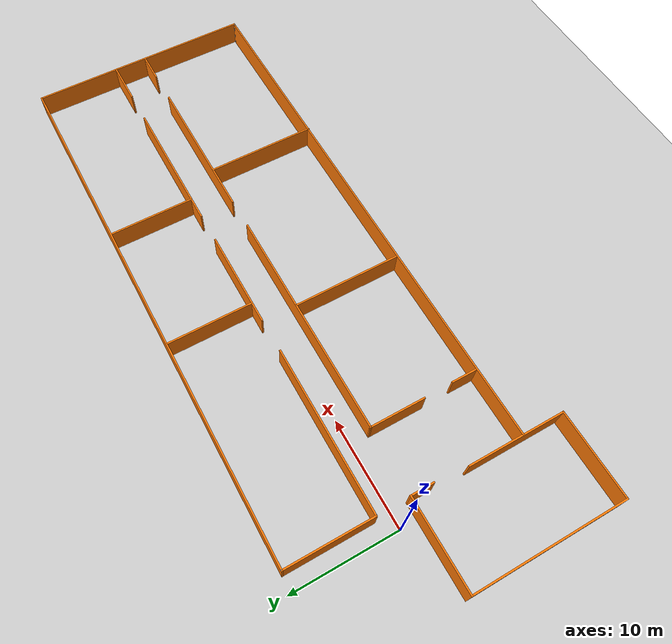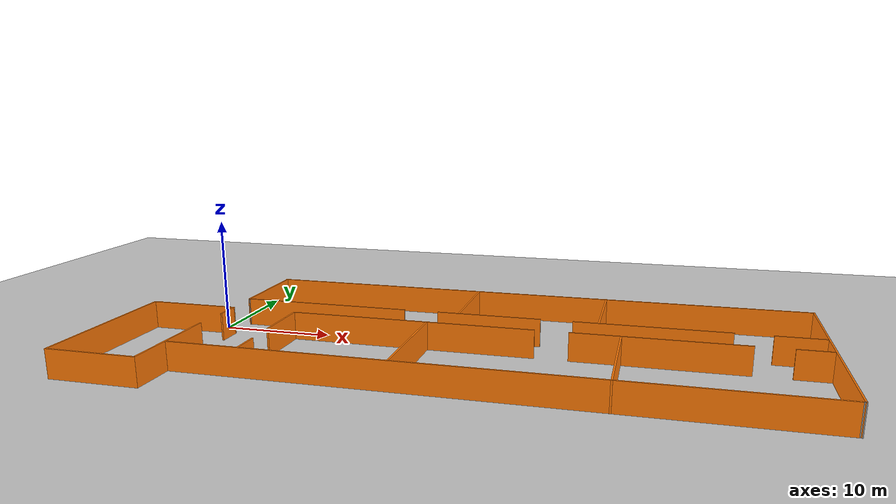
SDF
<sdf version="1.7">
 <world name="default">
  <light name="sun" type="directional">
   <pose>0 0 10 0 -0 0</pose>
   <diffuse>0.8 0.8 0.8 1</diffuse>
   <specular>0.2 0.2 0.2 1</specular>
   <attenuation>
    <range>1000</range>
    <constant>0.9</constant>
    <linear>0.01</linear>
    <quadratic>0.001</quadratic>
   </attenuation>
   <direction>-0.5 0.1 -0.9</direction>
   <spot><inner_angle>0</inner_angle><outer_angle>0</outer_angle><falloff>0</falloff></spot>
  </light>
  <model name="ground_plane">
   <static>1</static>
   <link name="link">
    <collision name="collision">
     <geometry><plane><normal>0 0 1</normal><size>100 100</size></plane></geometry>
     <surface>
      <contact><collide_bitmask>65535</collide_bitmask></contact>
      <friction><ode><mu>100</mu><mu2>50</mu2></ode></friction>
     </surface>
    </collision>
    <visual name="visual">
     <cast_shadows>0</cast_shadows>
     <geometry><plane><normal>0 0 1</normal><size>100 100</size></plane></geometry>
     <material>
      <script><uri>file://media/materials/scripts/gazebo.material</uri><name>Gazebo/Grey</name></script>
     </material>
    </visual>
   </link>
  </model>
  <gravity>0 0 -9.8</gravity>
  <magnetic_field>6e-06 2.3e-05 -4.2e-05</magnetic_field>
  <atmosphere type="adiabatic"/>
  <physics type="ode">
   <max_step_size>0.001</max_step_size>
   <real_time_factor>1</real_time_factor>
   <real_time_update_rate>1000</real_time_update_rate>
  </physics>
  <scene><ambient>0.4 0.4 0.4 1</ambient><background>0.7 0.7 0.7 1</background><shadows>1</shadows></scene>
  <spherical_coordinates>
   <surface_model>EARTH_WGS84</surface_model>
   <latitude_deg>0</latitude_deg>
   <longitude_deg>0</longitude_deg>
   <elevation>0</elevation>
   <heading_deg>0</heading_deg>
  </spherical_coordinates>
  <model name="telegabot_world">
   <pose>22.9849 -3.14705 0 0 -0 0</pose>
   <link name="Wall_0">
    <collision name="Wall_0_Collision">
     <geometry><box><size>2.25 0.15 2.5</size></box></geometry>
     <pose>0 0 1.25 0 -0 0</pose>
    </collision>
    <visual name="Wall_0_Visual">
     <pose>0 0 1.25 0 -0 0</pose>
     <geometry><box><size>2.25 0.15 2.5</size></box></geometry>
     <material>
      <script><uri>file://media/materials/scripts/gazebo.material</uri><name>Gazebo/Grey</name></script>
      <ambient>0.996078 0.47451 0.0196078 1</ambient>
     </material>
     <meta><layer>0</layer></meta>
    </visual>
    <pose>-21.4812 0.528132 0 0 -0 1.5708</pose>
   </link>
   <link name="Wall_1">
    <collision name="Wall_1_Collision">
     <geometry><box><size>8.25 0.15 2.5</size></box></geometry>
     <pose>0 0 1.25 0 -0 0</pose>
    </collision>
    <visual name="Wall_1_Visual">
     <pose>0 0 1.25 0 -0 0</pose>
     <geometry><box><size>8.25 0.15 2.5</size></box></geometry>
     <material>
      <script><uri>file://media/materials/scripts/gazebo.material</uri><name>Gazebo/Grey</name></script>
      <ambient>0.996078 0.47451 0.0196078 1</ambient>
     </material>
     <meta><layer>0</layer></meta>
    </visual>
    <pose>-25.5312 1.57813 0 0 -0 3.14159</pose>
   </link>
   <link name="Wall_10">
    <collision name="Wall_10_Collision">
     <geometry><box><size>0.16 0.15 2.5</size></box></geometry>
     <pose>0 0 1.25 0 -0 0</pose>
    </collision>
    <visual name="Wall_10_Visual">
     <pose>0 0 1.25 0 -0 0</pose>
     <geometry><box><size>0.16 0.15 2.5</size></box></geometry>
     <material>
      <script><uri>file://media/materials/scripts/gazebo.material</uri><name>Gazebo/Grey</name></script>
      <ambient>1 1 1 1</ambient>
     </material>
     <meta><layer>0</layer></meta>
    </visual>
    <pose>29.5762 12.7719 0 0 -0 0</pose>
   </link>
   <link name="Wall_11">
    <collision name="Wall_11_Collision">
     <geometry><box><size>51.25 0.15 2.5</size></box></geometry>
     <pose>0 0 1.25 0 -0 0</pose>
    </collision>
    <visual name="Wall_11_Visual">
     <pose>0 0 1.25 0 -0 0</pose>
     <geometry><box><size>51.25 0.15 2.5</size></box></geometry>
     <material>
      <script><uri>file://media/materials/scripts/gazebo.material</uri><name>Gazebo/Grey</name></script>
      <ambient>0.996078 0.47451 0.0196078 1</ambient>
     </material>
     <meta><layer>0</layer></meta>
    </visual>
    <pose>4.03118 12.7719 0 0 -0 3.14159</pose>
   </link>
   <link name="Wall_12">
    <collision name="Wall_12_Collision">
     <geometry><box><size>0.16 0.15 2.5</size></box></geometry>
     <pose>0 0 1.25 0 -0 0</pose>
    </collision>
    <visual name="Wall_12_Visual">
     <pose>0 0 1.25 0 -0 0</pose>
     <geometry><box><size>0.16 0.15 2.5</size></box></geometry>
     <material>
      <script><uri>file://media/materials/scripts/gazebo.material</uri><name>Gazebo/Grey</name></script>
      <ambient>1 1 1 1</ambient>
     </material>
     <meta><layer>0</layer></meta>
    </visual>
    <pose>-21.5138 12.7719 0 0 -0 0</pose>
   </link>
   <link name="Wall_13">
    <collision name="Wall_13_Collision">
     <geometry><box><size>8.25 0.15 2.5</size></box></geometry>
     <pose>0 0 1.25 0 -0 0</pose>
    </collision>
    <visual name="Wall_13_Visual">
     <pose>0 0 1.25 0 -0 0</pose>
     <geometry><box><size>8.25 0.15 2.5</size></box></geometry>
     <material>
      <script><uri>file://media/materials/scripts/gazebo.material</uri><name>Gazebo/Grey</name></script>
      <ambient>0.996078 0.47451 0.0196078 1</ambient>
     </material>
     <meta><layer>0</layer></meta>
    </visual>
    <pose>-21.5088 8.72187 0 0 -0 -1.5708</pose>
   </link>
   <link name="Wall_14">
    <collision name="Wall_14_Collision">
     <geometry><box><size>0.16 0.15 2.5</size></box></geometry>
     <pose>0 0 1.25 0 -0 0</pose>
    </collision>
    <visual name="Wall_14_Visual">
     <pose>0 0 1.25 0 -0 0</pose>
     <geometry><box><size>0.16 0.15 2.5</size></box></geometry>
     <material>
      <script><uri>file://media/materials/scripts/gazebo.material</uri><name>Gazebo/Grey</name></script>
      <ambient>1 1 1 1</ambient>
     </material>
     <meta><layer>0</layer></meta>
    </visual>
    <pose>-21.5038 4.67187 0 0 -0 0</pose>
   </link>
   <link name="Wall_15">
    <collision name="Wall_15_Collision">
     <geometry><box><size>15.5 0.15 2.5</size></box></geometry>
     <pose>0 0 1.25 0 -0 0</pose>
    </collision>
    <visual name="Wall_15_Visual">
     <pose>0 0 1.25 0 -0 0</pose>
     <geometry><box><size>15.5 0.15 2.5</size></box></geometry>
     <material>
      <script><uri>file://media/materials/scripts/gazebo.material</uri><name>Gazebo/Grey</name></script>
      <ambient>0.996078 0.47451 0.0196078 1</ambient>
     </material>
     <meta><layer>0</layer></meta>
    </visual>
    <pose>-13.8238 4.67187 0 0 -0 0</pose>
   </link>
   <link name="Wall_17">
    <collision name="Wall_17_Collision">
     <geometry><box><size>9.25 0.15 2.5</size></box></geometry>
     <pose>0 0 1.25 0 -0 0</pose>
    </collision>
    <visual name="Wall_17_Visual">
     <pose>0 0 1.25 0 -0 0</pose>
     <geometry><box><size>9.25 0.15 2.5</size></box></geometry>
     <material>
      <script><uri>file://media/materials/scripts/gazebo.material</uri><name>Gazebo/Grey</name></script>
      <ambient>0.996078 0.47451 0.0196078 1</ambient>
     </material>
     <meta><layer>0</layer></meta>
    </visual>
    <pose>1.65024 4.708 0 0 -0 0</pose>
   </link>
   <link name="Wall_2">
    <collision name="Wall_2_Collision">
     <geometry><box><size>14.5 0.15 2.5</size></box></geometry>
     <pose>0 0 1.25 0 -0 0</pose>
    </collision>
    <visual name="Wall_2_Visual">
     <pose>0 0 1.25 0 -0 0</pose>
     <geometry><box><size>14.5 0.15 2.5</size></box></geometry>
     <material>
      <script><uri>file://media/materials/scripts/gazebo.material</uri><name>Gazebo/Grey</name></script>
      <ambient>0.996078 0.47451 0.0196078 1</ambient>
     </material>
     <meta><layer>0</layer></meta>
    </visual>
    <pose>-29.5812 -5.59687 0 0 -0 -1.5708</pose>
   </link>
   <link name="Wall_20">
    <collision name="Wall_20_Collision">
     <geometry><box><size>13.25 0.15 2.5</size></box></geometry>
     <pose>0 0 1.25 0 -0 0</pose>
    </collision>
    <visual name="Wall_20_Visual">
     <pose>0 0 1.25 0 -0 0</pose>
     <geometry><box><size>13.25 0.15 2.5</size></box></geometry>
     <material>
      <script><uri>file://media/materials/scripts/gazebo.material</uri><name>Gazebo/Grey</name></script>
      <ambient>0.996078 0.47451 0.0196078 1</ambient>
     </material>
     <meta><layer>0</layer></meta>
    </visual>
    <pose>15.6889 4.72594 0 0 -0 0</pose>
   </link>
   <link name="Wall_22">
    <collision name="Wall_22_Collision">
     <geometry><box><size>4.25 0.15 2.5</size></box></geometry>
     <pose>0 0 1.25 0 -0 0</pose>
    </collision>
    <visual name="Wall_22_Visual">
     <pose>0 0 1.25 0 -0 0</pose>
     <geometry><box><size>4.25 0.15 2.5</size></box></geometry>
     <material>
      <script><uri>file://media/materials/scripts/gazebo.material</uri><name>Gazebo/Grey</name></script>
      <ambient>0.996078 0.47451 0.0196078 1</ambient>
     </material>
     <meta><layer>0</layer></meta>
    </visual>
    <pose>27.5131 4.71729 0 0 -0 0</pose>
   </link>
   <link name="Wall_25">
    <collision name="Wall_25_Collision">
     <geometry><box><size>8 0.15 2.5</size></box></geometry>
     <pose>0 0 1.25 0 -0 0</pose>
    </collision>
    <visual name="Wall_25_Visual">
     <pose>0 0 1.25 0 -0 0</pose>
     <geometry><box><size>8 0.15 2.5</size></box></geometry>
     <material>
      <script><uri>file://media/materials/scripts/gazebo.material</uri><name>Gazebo/Grey</name></script>
      <ambient>0.996078 0.47451 0.0196078 1</ambient>
     </material>
     <meta><layer>0</layer></meta>
    </visual>
    <pose>-1.04095 8.73729 0 0 -0 1.5708</pose>
   </link>
   <link name="Wall_27">
    <collision name="Wall_27_Collision">
     <geometry><box><size>8 0.15 2.5</size></box></geometry>
     <pose>0 0 1.25 0 -0 0</pose>
    </collision>
    <visual name="Wall_27_Visual">
     <pose>0 0 1.25 0 -0 0</pose>
     <geometry><box><size>8 0.15 2.5</size></box></geometry>
     <material>
      <script><uri>file://media/materials/scripts/gazebo.material</uri><name>Gazebo/Grey</name></script>
      <ambient>0.996078 0.47451 0.0196078 1</ambient>
     </material>
     <meta><layer>0</layer></meta>
    </visual>
    <pose>11.273 8.71293 0 0 -0 -1.5708</pose>
   </link>
   <link name="Wall_29">
    <collision name="Wall_29_Collision">
     <geometry><box><size>5.25 0.15 2.5</size></box></geometry>
     <pose>0 0 1.25 0 -0 0</pose>
    </collision>
    <visual name="Wall_29_Visual">
     <pose>0 0 1.25 0 -0 0</pose>
     <geometry><box><size>5.25 0.15 2.5</size></box></geometry>
     <material>
      <script><uri>file://media/materials/scripts/gazebo.material</uri><name>Gazebo/Grey</name></script>
      <ambient>0.996078 0.47451 0.0196078 1</ambient>
     </material>
     <meta><layer>0</layer></meta>
    </visual>
    <pose>-15.4046 -1.08784 0 0 -0 1.5708</pose>
   </link>
   <link name="Wall_3">
    <collision name="Wall_3_Collision">
     <geometry><box><size>8 0.15 2.5</size></box></geometry>
     <pose>0 0 1.25 0 -0 0</pose>
    </collision>
    <visual name="Wall_3_Visual">
     <pose>0 0 1.25 0 -0 0</pose>
     <geometry><box><size>8 0.15 2.5</size></box></geometry>
     <material>
      <script><uri>file://media/materials/scripts/gazebo.material</uri><name>Gazebo/Grey</name></script>
      <ambient>0.996078 0.47451 0.0196078 1</ambient>
     </material>
     <meta><layer>0</layer></meta>
    </visual>
    <pose>-25.6562 -12.7719 0 0 -0 0</pose>
   </link>
   <link name="Wall_30">
    <collision name="Wall_30_Collision">
     <geometry><box><size>21.75 0.15 2.5</size></box></geometry>
     <pose>0 0 1.25 0 -0 0</pose>
    </collision>
    <visual name="Wall_30_Visual">
     <pose>0 0 1.25 0 -0 0</pose>
     <geometry><box><size>21.75 0.15 2.5</size></box></geometry>
     <material>
      <script><uri>file://media/materials/scripts/gazebo.material</uri><name>Gazebo/Grey</name></script>
      <ambient>0.996078 0.47451 0.0196078 1</ambient>
     </material>
     <meta><layer>0</layer></meta>
    </visual>
    <pose>-4.60461 1.46216 0 0 -0 0</pose>
   </link>
   <link name="Wall_32">
    <collision name="Wall_32_Collision">
     <geometry><box><size>14.5 0.15 2.5</size></box></geometry>
     <pose>0 0 1.25 0 -0 0</pose>
    </collision>
    <visual name="Wall_32_Visual">
     <pose>0 0 1.25 0 -0 0</pose>
     <geometry><box><size>14.5 0.15 2.5</size></box></geometry>
     <material>
      <script><uri>file://media/materials/scripts/gazebo.material</uri><name>Gazebo/Grey</name></script>
      <ambient>0.996078 0.47451 0.0196078 1</ambient>
     </material>
     <meta><layer>0</layer></meta>
    </visual>
    <pose>16.3674 1.50002 0 0 -0 0</pose>
   </link>
   <link name="Wall_34">
    <collision name="Wall_34_Collision">
     <geometry><box><size>3 0.15 2.5</size></box></geometry>
     <pose>0 0 1.25 0 -0 0</pose>
    </collision>
    <visual name="Wall_34_Visual">
     <pose>0 0 1.25 0 -0 0</pose>
     <geometry><box><size>3 0.15 2.5</size></box></geometry>
     <material>
      <script><uri>file://media/materials/scripts/gazebo.material</uri><name>Gazebo/Grey</name></script>
      <ambient>0.996078 0.47451 0.0196078 1</ambient>
     </material>
     <meta><layer>0</layer></meta>
    </visual>
    <pose>28.1346 1.50002 0 0 -0 0</pose>
   </link>
   <link name="Wall_36">
    <collision name="Wall_36_Collision">
     <geometry><box><size>2.5 0.15 2.5</size></box></geometry>
     <pose>0 0 1.25 0 -0 0</pose>
    </collision>
    <visual name="Wall_36_Visual">
     <pose>0 0 1.25 0 -0 0</pose>
     <geometry><box><size>2.5 0.15 2.5</size></box></geometry>
     <material>
      <script><uri>file://media/materials/scripts/gazebo.material</uri><name>Gazebo/Grey</name></script>
      <ambient>0.996078 0.47451 0.0196078 1</ambient>
     </material>
     <meta><layer>0</layer></meta>
    </visual>
    <pose>-15.3642 -7.60069 0 0 -0 1.5708</pose>
   </link>
   <link name="Wall_38">
    <collision name="Wall_38_Collision">
     <geometry><box><size>10.25 0.15 2.5</size></box></geometry>
     <pose>0 0 1.25 0 -0 0</pose>
    </collision>
    <visual name="Wall_38_Visual">
     <pose>0 0 1.25 0 -0 0</pose>
     <geometry><box><size>10.25 0.15 2.5</size></box></geometry>
     <material>
      <script><uri>file://media/materials/scripts/gazebo.material</uri><name>Gazebo/Grey</name></script>
      <ambient>0.996078 0.47451 0.0196078 1</ambient>
     </material>
     <meta><layer>0</layer></meta>
    </visual>
    <pose>-3.06566 -3.68524 0 0 -0 1.5708</pose>
   </link>
   <link name="Wall_4">
    <collision name="Wall_4_Collision">
     <geometry><box><size>9.25 0.15 2.5</size></box></geometry>
     <pose>0 0 1.25 0 -0 0</pose>
    </collision>
    <visual name="Wall_4_Visual">
     <pose>0 0 1.25 0 -0 0</pose>
     <geometry><box><size>9.25 0.15 2.5</size></box></geometry>
     <material>
      <script><uri>file://media/materials/scripts/gazebo.material</uri><name>Gazebo/Grey</name></script>
      <ambient>0.996078 0.47451 0.0196078 1</ambient>
     </material>
     <meta><layer>0</layer></meta>
    </visual>
    <pose>-21.7312 -8.22187 0 0 -0 1.5708</pose>
   </link>
   <link name="Wall_40">
    <collision name="Wall_40_Collision">
     <geometry><box><size>10.5 0.15 2.5</size></box></geometry>
     <pose>0 0 1.25 0 -0 0</pose>
    </collision>
    <visual name="Wall_40_Visual">
     <pose>0 0 1.25 0 -0 0</pose>
     <geometry><box><size>10.5 0.15 2.5</size></box></geometry>
     <material>
      <script><uri>file://media/materials/scripts/gazebo.material</uri><name>Gazebo/Grey</name></script>
      <ambient>0.996078 0.47451 0.0196078 1</ambient>
     </material>
     <meta><layer>0</layer></meta>
    </visual>
    <pose>13.3492 -3.69136 0 0 -0 1.5708</pose>
   </link>
   <link name="Wall_7">
    <collision name="Wall_7_Collision">
     <geometry><box><size>51.25 0.15 2.5</size></box></geometry>
     <pose>0 0 1.25 0 -0 0</pose>
    </collision>
    <visual name="Wall_7_Visual">
     <pose>0 0 1.25 0 -0 0</pose>
     <geometry><box><size>51.25 0.15 2.5</size></box></geometry>
     <material>
      <script><uri>file://media/materials/scripts/gazebo.material</uri><name>Gazebo/Grey</name></script>
      <ambient>0.996078 0.47451 0.0196078 1</ambient>
     </material>
     <meta><layer>0</layer></meta>
    </visual>
    <pose>3.86248 -8.8269 0 0 -0 0</pose>
   </link>
   <link name="Wall_8">
    <collision name="Wall_8_Collision">
     <geometry><box><size>0.311165 0.15 2.5</size></box></geometry>
     <pose>0 0 1.25 0 -0 0</pose>
    </collision>
    <visual name="Wall_8_Visual">
     <pose>0 0 1.25 0 -0 0</pose>
     <geometry><box><size>0.311165 0.15 2.5</size></box></geometry>
     <material>
      <script><uri>file://media/materials/scripts/gazebo.material</uri><name>Gazebo/Grey</name></script>
      <ambient>1 1 1 1</ambient>
     </material>
     <meta><layer>0</layer></meta>
    </visual>
    <pose>29.4906 -8.82752 0 0 -0 -0.007625</pose>
   </link>
   <link name="Wall_9">
    <collision name="Wall_9_Collision">
     <geometry><box><size>21.75 0.15 2.5</size></box></geometry>
     <pose>0 0 1.25 0 -0 0</pose>
    </collision>
    <visual name="Wall_9_Visual">
     <pose>0 0 1.25 0 -0 0</pose>
     <geometry><box><size>21.75 0.15 2.5</size></box></geometry>
     <material>
      <script><uri>file://media/materials/scripts/gazebo.material</uri><name>Gazebo/Grey</name></script>
      <ambient>0.996078 0.47451 0.0196078 1</ambient>
     </material>
     <meta><layer>0</layer></meta>
    </visual>
    <pose>29.5712 1.97187 0 0 -0 1.5708</pose>
   </link>
   <static>1</static>
  </model>
 </world>
</sdf>
